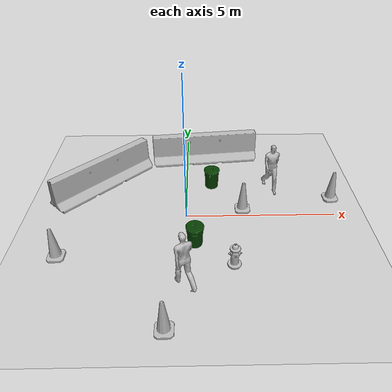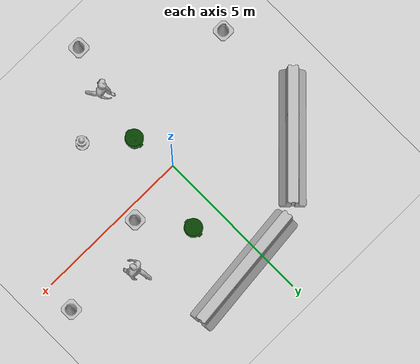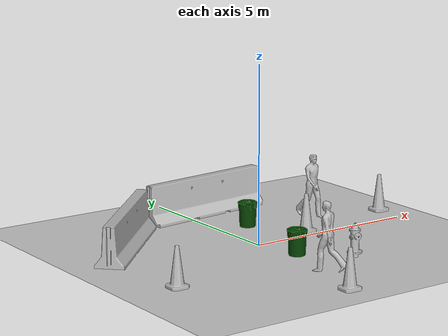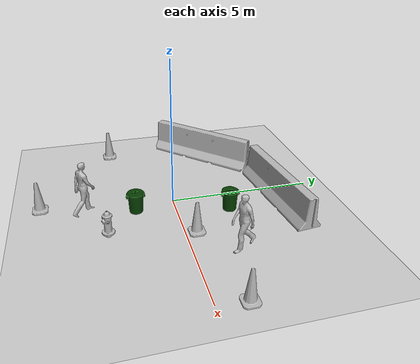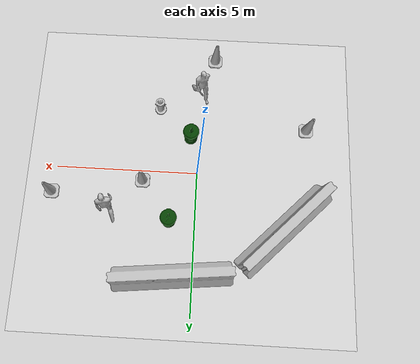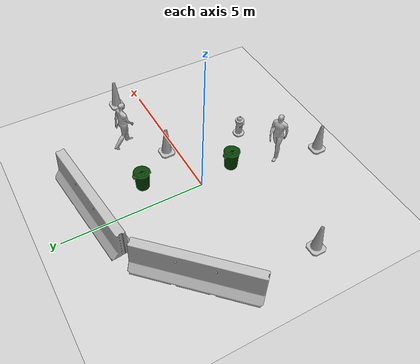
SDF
<sdf version="1.4">
 <world name="default">
  <light name="sun" type="directional">
   <pose>0 0 10 0 -0 0</pose>
   <diffuse>0.8 0.8 0.8 1</diffuse>
   <specular>0.2 0.2 0.2 1</specular>
   <attenuation>
    <range>1000</range>
    <constant>0.9</constant>
    <linear>0.01</linear>
    <quadratic>0.001</quadratic>
   </attenuation>
   <direction>-0.5 0.1 -0.9</direction>
  </light>
  <model name="ground_plane">
   <static>1</static>
   <link name="link">
    <collision name="collision">
     <geometry><plane><normal>0 0 1</normal><size>100 100</size></plane></geometry>
     <surface><friction><ode><mu>100</mu><mu2>50</mu2></ode></friction></surface>
    </collision>
    <visual name="visual">
     <cast_shadows>0</cast_shadows>
     <geometry><plane><normal>0 0 1</normal><size>100 100</size></plane></geometry>
     <material>
      <script><uri>file://media/materials/scripts/gazebo.material</uri><name>Gazebo/Grey</name></script>
     </material>
    </visual>
    <velocity_decay><linear>0</linear><angular>0</angular></velocity_decay>
   </link>
  </model>
  <physics type="ode">
   <max_step_size>0.01</max_step_size>
   <real_time_factor>1</real_time_factor>
   <real_time_update_rate>100</real_time_update_rate>
   <gravity>0 0 -9.8</gravity>
  </physics>
  <scene><ambient>0.4 0.4 0.4 1</ambient><background>0.7 0.7 0.7 1</background><shadows>1</shadows></scene>
  <spherical_coordinates>
   <surface_model>EARTH_WGS84</surface_model>
   <latitude_deg>0</latitude_deg>
   <longitude_deg>0</longitude_deg>
   <elevation>0</elevation>
   <heading_deg>0</heading_deg>
  </spherical_coordinates>
  <model name="jersey_barrier">
   <static>1</static>
   <link name="link">
    <visual name="visual">
     <geometry><mesh><uri>model://jersey_barrier/meshes/jersey_barrier.dae</uri></mesh></geometry>
    </visual>
    <collision name="upright">
     <pose>0 0 0.5715 0 -0 0</pose>
     <geometry><box><size>4.06542 0.3063 1.143</size></box></geometry>
    </collision>
    <collision name="base">
     <pose>0 0 0.032258 0 -0 0</pose>
     <geometry><box><size>4.06542 0.8107 0.064516</size></box></geometry>
    </collision>
    <collision name="base2">
     <pose>0 0 0.1 0 -0 0</pose>
     <geometry><box><size>4.06542 0.65 0.1</size></box></geometry>
    </collision>
    <collision name="base3">
     <pose>0 0 0.2 0 -0 0</pose>
     <geometry><box><size>4.06542 0.5 0.1</size></box></geometry>
    </collision>
    <collision name="left-angle">
     <pose>0 -0.224 0.2401 0.9 -0 0</pose>
     <geometry><box><size>4.06542 0.5 0.064516</size></box></geometry>
    </collision>
    <collision name="right-angle">
     <pose>0 0.224 0.2401 -0.9 0 0</pose>
     <geometry><box><size>4.06542 0.5 0.064516</size></box></geometry>
    </collision>
    <velocity_decay><linear>0</linear><angular>0</angular></velocity_decay>
   </link>
   <pose>-3.06915 1.89485 0 0 -0 0.79056</pose>
  </model>
  <model name="jersey_barrier_0">
   <static>1</static>
   <link name="link">
    <visual name="visual">
     <geometry><mesh><uri>model://jersey_barrier/meshes/jersey_barrier.dae</uri></mesh></geometry>
    </visual>
    <collision name="upright">
     <pose>0 0 0.5715 0 -0 0</pose>
     <geometry><box><size>4.06542 0.3063 1.143</size></box></geometry>
    </collision>
    <collision name="base">
     <pose>0 0 0.032258 0 -0 0</pose>
     <geometry><box><size>4.06542 0.8107 0.064516</size></box></geometry>
    </collision>
    <collision name="base2">
     <pose>0 0 0.1 0 -0 0</pose>
     <geometry><box><size>4.06542 0.65 0.1</size></box></geometry>
    </collision>
    <collision name="base3">
     <pose>0 0 0.2 0 -0 0</pose>
     <geometry><box><size>4.06542 0.5 0.1</size></box></geometry>
    </collision>
    <collision name="left-angle">
     <pose>0 -0.224 0.2401 0.9 -0 0</pose>
     <geometry><box><size>4.06542 0.5 0.064516</size></box></geometry>
    </collision>
    <collision name="right-angle">
     <pose>0 0.224 0.2401 -0.9 0 0</pose>
     <geometry><box><size>4.06542 0.5 0.064516</size></box></geometry>
    </collision>
    <velocity_decay><linear>0</linear><angular>0</angular></velocity_decay>
   </link>
   <pose>0.681006 3.65238 0 0 0 -3.03835</pose>
  </model>
  <model name="person_walking">
   <link name="link">
    <inertial>
     <pose>0 0 0.95 0 -0 0</pose>
     <mass>80</mass>
     <inertia><ixx>27.82</ixx><ixy>0</ixy><ixz>0</ixz><iyy>24.88</iyy><iyz>0</iyz><izz>4.57</izz></inertia>
    </inertial>
    <collision name="bottom">
     <pose>0 0 0.01 0 -0 0</pose>
     <geometry><box><size>0.35 0.75 0.02</size></box></geometry>
    </collision>
    <collision name="person">
     <pose>0 0 -0.02 0 -0 0</pose>
     <geometry><mesh><uri>model://person_walking/meshes/walking.dae</uri></mesh></geometry>
    </collision>
    <visual name="visual">
     <pose>0 0 -0.02 0 -0 0</pose>
     <geometry><mesh><uri>model://person_walking/meshes/walking.dae</uri></mesh></geometry>
    </visual>
    <velocity_decay><linear>0</linear><angular>0</angular></velocity_decay>
   </link>
   <pose>-0.000338 -3.00016 -0.000107 -0.00023 0.000117 -2.67827</pose>
   <static>0</static>
  </model>
  <model name="person_walking_0">
   <link name="link">
    <inertial>
     <pose>0 0 0.95 0 -0 0</pose>
     <mass>80</mass>
     <inertia><ixx>27.82</ixx><ixy>0</ixy><ixz>0</ixz><iyy>24.88</iyy><iyz>0</iyz><izz>4.57</izz></inertia>
    </inertial>
    <collision name="bottom">
     <pose>0 0 0.01 0 -0 0</pose>
     <geometry><box><size>0.35 0.75 0.02</size></box></geometry>
    </collision>
    <collision name="person">
     <pose>0 0 -0.02 0 -0 0</pose>
     <geometry><mesh><uri>model://person_walking/meshes/walking.dae</uri></mesh></geometry>
    </collision>
    <visual name="visual">
     <pose>0 0 -0.02 0 -0 0</pose>
     <geometry><mesh><uri>model://person_walking/meshes/walking.dae</uri></mesh></geometry>
    </visual>
    <velocity_decay><linear>0</linear><angular>0</angular></velocity_decay>
   </link>
   <pose>3.00013 1.50892 -0.000867 1.5e-05 -4.7e-05 0.179312</pose>
   <static>0</static>
  </model>
  <model name="coke_can">
   <link name="link">
    <inertial>
     <pose>-0.01 -0.012 0.15 0 -0 0</pose>
     <mass>0.39</mass>
     <inertia><ixx>0.00058</ixx><ixy>0</ixy><ixz>0</ixz><iyy>0.00058</iyy><iyz>0</iyz><izz>0.00019</izz></inertia>
    </inertial>
    <collision name="collision">
     <pose>0 0 -0.46 0 -0 0</pose>
     <geometry><mesh><uri>model://coke_can/meshes/coke_can.dae</uri></mesh></geometry>
     <surface>
      <friction><ode><mu>1</mu><mu2>1</mu2></ode></friction>
      <contact><ode><kp>1e+07</kp><kd>1</kd><min_depth>0.001</min_depth><max_vel>0.1</max_vel></ode></contact>
     </surface>
    </collision>
    <visual name="visual">
     <pose>0 0 -0.46 0 -0 0</pose>
     <geometry><mesh><uri>model://coke_can/meshes/coke_can.dae</uri></mesh></geometry>
    </visual>
    <velocity_decay><linear>0</linear><angular>0</angular></velocity_decay>
   </link>
   <pose>-0.77937 1.72715 -0.004751 -0.069662 0.01018 -0.009552</pose>
   <static>0</static>
  </model>
  <model name="coke_can_0">
   <link name="link">
    <inertial>
     <pose>-0.01 -0.012 0.15 0 -0 0</pose>
     <mass>0.39</mass>
     <inertia><ixx>0.00058</ixx><ixy>0</ixy><ixz>0</ixz><iyy>0.00058</iyy><iyz>0</iyz><izz>0.00019</izz></inertia>
    </inertial>
    <collision name="collision">
     <pose>0 0 -0.46 0 -0 0</pose>
     <geometry><mesh><uri>model://coke_can/meshes/coke_can.dae</uri></mesh></geometry>
     <surface>
      <friction><ode><mu>1</mu><mu2>1</mu2></ode></friction>
      <contact><ode><kp>1e+07</kp><kd>1</kd><min_depth>0.001</min_depth><max_vel>0.1</max_vel></ode></contact>
     </surface>
    </collision>
    <visual name="visual">
     <pose>0 0 -0.46 0 -0 0</pose>
     <geometry><mesh><uri>model://coke_can/meshes/coke_can.dae</uri></mesh></geometry>
    </visual>
    <velocity_decay><linear>0</linear><angular>0</angular></velocity_decay>
   </link>
   <pose>2.41682 -3.1412 -0.004755 -0.069522 0.010374 -0.009548</pose>
   <static>0</static>
  </model>
  <model name="first_2015_trash_can">
   <link name="link">
    <inertial>
     <pose>0 0 0.3683 0 -0 0</pose>
     <mass>4.83076</mass>
     <inertia>
      <ixx>0.281534</ixx>
      <ixy>0</ixy>
      <ixz>0</ixz>
      <iyy>0.281534</iyy>
      <iyz>0</iyz>
      <izz>0.126223</izz>
     </inertia>
    </inertial>
    <visual name="visual">
     <geometry><mesh><uri>model://first_2015_trash_can/meshes/trash_can.dae</uri></mesh></geometry>
    </visual>
    <collision name="collision">
     <geometry><mesh><uri>model://first_2015_trash_can/meshes/trash_can.dae</uri></mesh></geometry>
    </collision>
    <velocity_decay><linear>0</linear><angular>0</angular></velocity_decay>
   </link>
   <pose>0.290946 -1.31689 -3.9e-05 0.000373 0.000123 -0.009574</pose>
   <static>0</static>
  </model>
  <model name="first_2015_trash_can_0">
   <link name="link">
    <inertial>
     <pose>0 0 0.3683 0 -0 0</pose>
     <mass>4.83076</mass>
     <inertia>
      <ixx>0.281534</ixx>
      <ixy>0</ixy>
      <ixz>0</ixz>
      <iyy>0.281534</iyy>
      <iyz>0</iyz>
      <izz>0.126223</izz>
     </inertia>
    </inertial>
    <visual name="visual">
     <geometry><mesh><uri>model://first_2015_trash_can/meshes/trash_can.dae</uri></mesh></geometry>
    </visual>
    <collision name="collision">
     <geometry><mesh><uri>model://first_2015_trash_can/meshes/trash_can.dae</uri></mesh></geometry>
    </collision>
    <velocity_decay><linear>0</linear><angular>0</angular></velocity_decay>
   </link>
   <pose>0.907795 1.77239 -1.8e-05 4.5e-05 0.00013 -0.009744</pose>
   <static>0</static>
  </model>
  <model name="Construction Cone">
   <link name="link">
    <collision name="collision">
     <geometry>
      <mesh><scale>10 10 10</scale><uri>model://construction_cone/meshes/construction_cone.dae</uri></mesh>
     </geometry>
    </collision>
    <visual name="visual">
     <geometry>
      <mesh><scale>10 10 10</scale><uri>model://construction_cone/meshes/construction_cone.dae</uri></mesh>
     </geometry>
    </visual>
    <velocity_decay><linear>0</linear><angular>0</angular></velocity_decay>
    <inertial>
     <inertia><ixx>1</ixx><ixy>0</ixy><ixz>0</ixz><iyy>1</iyy><iyz>0</iyz><izz>1</izz></inertia>
     <mass>1</mass>
    </inertial>
   </link>
   <pose>5.09144 0.923165 -0.000878 6e-06 1e-06 -1e-06</pose>
   <static>0</static>
  </model>
  <model name="Construction Cone_0">
   <link name="link">
    <collision name="collision">
     <geometry>
      <mesh><scale>10 10 10</scale><uri>model://construction_cone/meshes/construction_cone.dae</uri></mesh>
     </geometry>
    </collision>
    <visual name="visual">
     <geometry>
      <mesh><scale>10 10 10</scale><uri>model://construction_cone/meshes/construction_cone.dae</uri></mesh>
     </geometry>
    </visual>
    <velocity_decay><linear>0</linear><angular>0</angular></velocity_decay>
    <inertial>
     <inertia><ixx>1</ixx><ixy>0</ixy><ixz>0</ixz><iyy>1</iyy><iyz>0</iyz><izz>1</izz></inertia>
     <mass>1</mass>
    </inertial>
   </link>
   <pose>-3.8849 -1.82072 -0.000878 6e-06 1e-06 -1e-06</pose>
   <static>0</static>
  </model>
  <model name="Construction Cone_1">
   <link name="link">
    <collision name="collision">
     <geometry>
      <mesh><scale>10 10 10</scale><uri>model://construction_cone/meshes/construction_cone.dae</uri></mesh>
     </geometry>
    </collision>
    <visual name="visual">
     <geometry>
      <mesh><scale>10 10 10</scale><uri>model://construction_cone/meshes/construction_cone.dae</uri></mesh>
     </geometry>
    </visual>
    <velocity_decay><linear>0</linear><angular>0</angular></velocity_decay>
    <inertial>
     <inertia><ixx>1</ixx><ixy>0</ixy><ixz>0</ixz><iyy>1</iyy><iyz>0</iyz><izz>1</izz></inertia>
     <mass>1</mass>
    </inertial>
   </link>
   <pose>1.91526 0.359092 -0.000878 6e-06 1e-06 -1e-06</pose>
   <static>0</static>
  </model>
  <model name="Construction Cone_2">
   <link name="link">
    <collision name="collision">
     <geometry>
      <mesh><scale>10 10 10</scale><uri>model://construction_cone/meshes/construction_cone.dae</uri></mesh>
     </geometry>
    </collision>
    <visual name="visual">
     <geometry>
      <mesh><scale>10 10 10</scale><uri>model://construction_cone/meshes/construction_cone.dae</uri></mesh>
     </geometry>
    </visual>
    <velocity_decay><linear>0</linear><angular>0</angular></velocity_decay>
    <inertial>
     <inertia><ixx>1</ixx><ixy>0</ixy><ixz>0</ixz><iyy>1</iyy><iyz>0</iyz><izz>1</izz></inertia>
     <mass>1</mass>
    </inertial>
   </link>
   <pose>-0.491807 -4.45721 -0.000878 6e-06 1e-06 -1e-06</pose>
   <static>0</static>
  </model>
  <model name="fire_hydrant">
   <static>1</static>
   <link name="link">
    <collision name="collision">
     <geometry><mesh><uri>model://fire_hydrant/meshes/fire_hydrant.dae</uri></mesh></geometry>
    </collision>
    <visual name="visual">
     <geometry><mesh><uri>model://fire_hydrant/meshes/fire_hydrant.dae</uri></mesh></geometry>
    </visual>
    <velocity_decay><linear>0</linear><angular>0</angular></velocity_decay>
   </link>
   <pose>1.43585 -2.34192 0 0 -0 0</pose>
  </model>
 </world>
</sdf>
